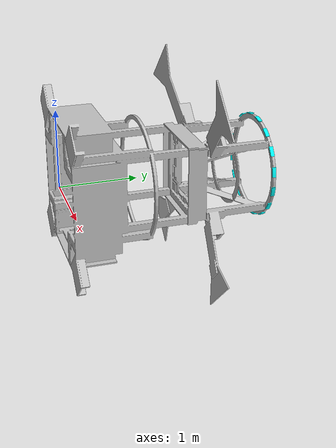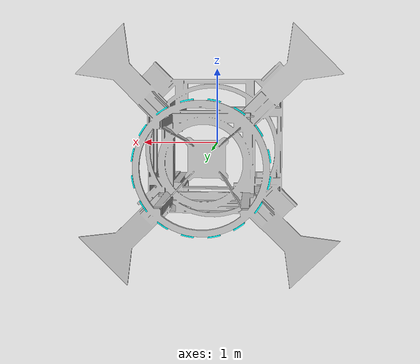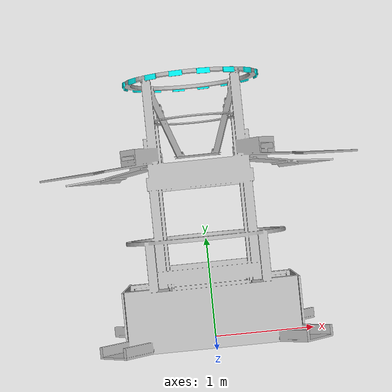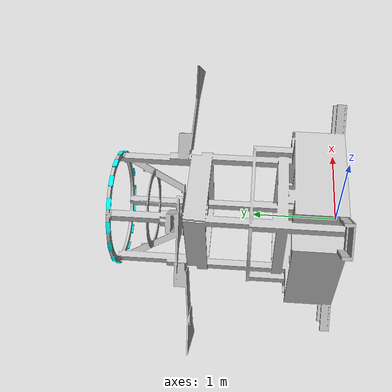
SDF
<?xml version="1.0" encoding="utf-8"?>
<sdf version="1.7">
  <model name="Hub">
    <pose>0 0 0 0 0 0</pose>
    <link name="Hub">
      <gravity>1</gravity>
      <self_collide>0</self_collide>
      <pose>-1.6870349382043E-15 0.947738784194687 -3.83967876294514E-15 0 0 0</pose>
      <must_be_base_link>1</must_be_base_link>
      <velocity_decay>
        <linear>0</linear>
        <angular>0</angular>
      </velocity_decay>
      <inertial>
        <mass>417.756360625355</mass>
        <pose>0 0 0 0 0 0</pose>
        <inertia>
          <ixx>367.907361633735</ixx>
          <ixy>1.53965729055017E-12</ixy>
          <ixz>1.68753899743024E-13</ixz>
          <iyy>273.772658079447</iyy>
          <iyz>6.81676937119846E-13</iyz>
          <izz>367.907361633737</izz>
        </inertia>
      </inertial>
      <collision name="Hub_collision">
        <pose>1.6870349382043E-15 -0.947738784194687 3.83967876294514E-15 0 0 0</pose>
        <geometry>
          <mesh>
            <scale>1 1 1</scale>
            <uri>model://Hub/meshes/Hub_col.STL</uri>
          </mesh>
        </geometry>
        <surface>
          <contact>
            <ode />
          </contact>
          <friction>
            <ode>
              <mu>0</mu>
              <mu2>0</mu2>
            </ode>
          </friction>
        </surface>
      </collision>
      <visual name="Hub_visual">
        <pose>1.6870349382043E-15 -0.947738784194687 3.83967876294514E-15 0 0 0</pose>
        <material>
          <ambient>0.752941176470588 0.752941176470588 0.752941176470588 1</ambient>
          <diffuse>0.752941176470588 0.752941176470588 0.752941176470588 1</diffuse>
        </material>
        <geometry>
          <mesh>
            <scale>1 1 1</scale>
            <uri>model://Hub/meshes/Hub.STL</uri>
          </mesh>
        </geometry>
      </visual>
    </link>
    <link name="TapeStrips">
      <gravity>1</gravity>
      <self_collide>0</self_collide>
      <pose>0 2.60746875 0 0 0 0</pose>
      <must_be_base_link>0</must_be_base_link>
      <visual name="TapeStrips_visual">
        <pose>0 -2.6 0 0 0 0</pose>
        <material>
          <emissive>0 1 1 1</emissive>
          <ambient>0 1 1 1</ambient>
          <diffuse>0 1 1 1</diffuse>
        </material>
        <geometry>
          <mesh>
            <scale>1 1 1</scale>
            <uri>model://TapeRing/meshes/Ring.STL</uri>
          </mesh>
        </geometry>
      </visual>
    </link>
    <joint name="Tape" type="fixed">
      <parent>Hub</parent>
      <child>TapeStrips</child>
   </joint>

    <joint name="Hub-World" type="fixed">
      <parent>world</parent>
      <child>Hub</child>
   </joint>
  </model>
</sdf>
